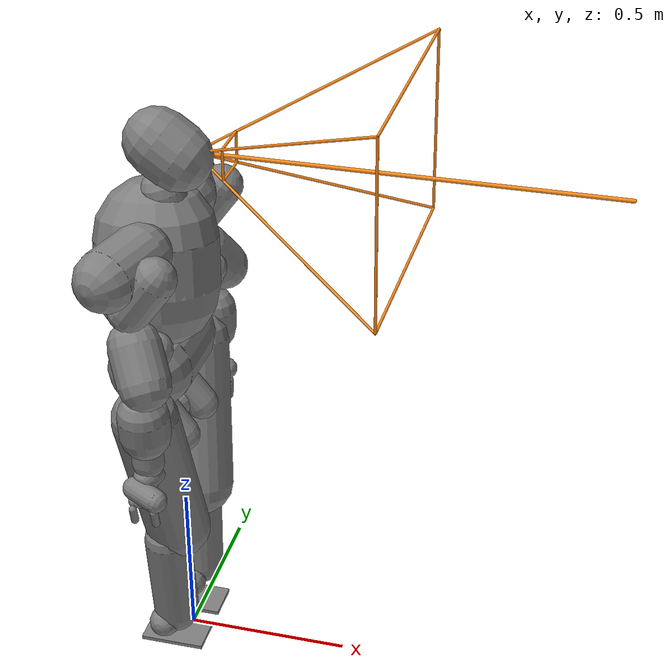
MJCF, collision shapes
<!-- GENERATED by talos_study_import.py from talos.xml - do not hand-edit. -->
<mujoco model="talos_study">
  <compiler angle="radian" meshdir="assets" autolimits="true" />
  <option timestep="0.001" integrator="implicitfast" />
  <asset>
    <material name="black" rgba="0.1 0.1 0.1 1" />
    <material name="orange" rgba="1 0.5 0 1" />
    <material name="white" rgba="0.9 0.9 0.9 1" />
    <mesh file="torso/torso_1.stl" />
    <mesh file="torso/torso_2.stl" />
    <mesh file="torso/torso_2_collision.stl" />
    <mesh file="torso/base_link.stl" />
    <mesh file="torso/base_link_collision.stl" />
    <mesh file="head/head_1.stl" />
    <mesh file="head/head_1_collision.stl" />
    <mesh file="head/head_2_default.stl" />
    <mesh file="head/head_2_default_collision.stl" />
    <mesh file="sensors/orbbec/orbbec.stl" />
    <mesh name="l_arm_1" file="arm/arm_1.stl" />
    <mesh name="l_arm_1c" file="arm/arm_1_collision.stl" />
    <mesh name="l_arm_2" file="arm/arm_2.stl" />
    <mesh name="l_arm_2c" file="arm/arm_2_collision.stl" />
    <mesh name="l_arm_3" file="arm/arm_3.stl" />
    <mesh name="l_arm_3c" file="arm/arm_3_collision.stl" />
    <mesh name="l_arm_4" file="arm/arm_4.stl" />
    <mesh name="l_arm_4c" file="arm/arm_4_collision.stl" />
    <mesh name="l_arm_5" file="arm/arm_5.stl" />
    <mesh name="l_arm_5c" file="arm/arm_5_collision.stl" />
    <mesh name="l_arm_6" file="arm/arm_6.stl" />
    <mesh name="l_arm_6c" file="arm/arm_6_collision.stl" />
    <mesh name="l_arm_7" file="arm/arm_7.stl" />
    <mesh name="l_arm_7c" file="arm/arm_7_collision.stl" />
    <mesh name="r_arm_1" file="arm/arm_1.stl" scale="1 -1 1" />
    <mesh name="r_arm_1c" file="arm/arm_1_collision.stl" scale="1 -1 1" />
    <mesh name="r_arm_2" file="arm/arm_2.stl" scale="1 -1 1" />
    <mesh name="r_arm_2c" file="arm/arm_2_collision.stl" scale="1 -1 1" />
    <mesh name="r_arm_3" file="arm/arm_3.stl" scale="1 -1 1" />
    <mesh name="r_arm_3c" file="arm/arm_3_collision.stl" scale="1 -1 1" />
    <mesh name="r_arm_4" file="arm/arm_4.stl" scale="1 -1 1" />
    <mesh name="r_arm_4c" file="arm/arm_4_collision.stl" scale="1 -1 1" />
    <mesh name="r_arm_5" file="arm/arm_5.stl" scale="1 -1 1" />
    <mesh name="r_arm_5c" file="arm/arm_5_collision.stl" scale="1 -1 1" />
    <mesh name="r_arm_6" file="arm/arm_6.stl" scale="1 -1 1" />
    <mesh name="r_arm_6c" file="arm/arm_6_collision.stl" scale="1 -1 1" />
    <mesh name="r_arm_7" file="arm/arm_7.stl" scale="1 -1 1" />
    <mesh name="r_arm_7c" file="arm/arm_7_collision.stl" scale="1 -1 1" />
    <mesh name="gripper_base_link" file="gripper/base_link.stl" />
    <mesh name="gripper_base_link_collision" file="gripper/base_link_collision.stl" />
    <mesh file="gripper/fingertip.stl" />
    <mesh file="gripper/fingertip_collision.stl" />
    <mesh file="gripper/gripper_motor_double.stl" />
    <mesh file="gripper/gripper_motor_double_collision.stl" />
    <mesh file="gripper/gripper_motor_single.stl" />
    <mesh file="gripper/gripper_motor_single_collision.stl" />
    <mesh file="gripper/inner_double.stl" />
    <mesh file="gripper/inner_double_collision.stl" />
    <mesh file="gripper/inner_single.stl" />
    <mesh file="gripper/inner_single_collision.stl" />
    <mesh name="l_hip_z_lo_res" file="v2/hip_z_lo_res.stl" />
    <mesh name="l_hip_z_collision" file="v2/hip_z_collision.stl" />
    <mesh name="l_hip_x_lo_res" file="v2/hip_x_lo_res.stl" />
    <mesh name="l_hip_x_collision" file="v2/hip_x_collision.stl" />
    <mesh name="l_hip_y_lo_res" file="v2/hip_y_lo_res.stl" />
    <mesh name="l_hip_y_collision" file="v2/hip_y_collision.stl" />
    <mesh name="l_knee_lo_res" file="v2/knee_lo_res.stl" />
    <mesh name="l_knee_collision" file="v2/knee_collision.stl" />
    <mesh name="l_ankle_Y_lo_res" file="v2/ankle_Y_lo_res.stl" />
    <mesh name="l_ankle_Y_collision" file="v2/ankle_Y_collision.stl" />
    <mesh name="l_ankle_X_lo_res" file="v2/ankle_X_lo_res.stl" />
    <mesh name="l_ankle_X_collision" file="v2/ankle_X_collision.stl" scale="1 1 0.88" />
    <mesh name="r_hip_z_lo_res" file="v2/hip_z_lo_res.stl" scale="1 -1 1" />
    <mesh name="r_hip_z_collision" file="v2/hip_z_collision.stl" scale="1 -1 1" />
    <mesh name="r_hip_x_lo_res" file="v2/hip_x_lo_res.stl" scale="1 -1 1" />
    <mesh name="r_hip_x_collision" file="v2/hip_x_collision.stl" scale="1 -1 1" />
    <mesh name="r_hip_y_lo_res" file="v2/hip_y_lo_res.stl" scale="1 -1 1" />
    <mesh name="r_hip_y_collision" file="v2/hip_y_collision.stl" scale="1 -1 1" />
    <mesh name="r_knee_lo_res" file="v2/knee_lo_res.stl" scale="1 -1 1" />
    <mesh name="r_knee_collision" file="v2/knee_collision.stl" scale="1 -1 1" />
    <mesh name="r_ankle_Y_lo_res" file="v2/ankle_Y_lo_res.stl" scale="1 -1 1" />
    <mesh name="r_ankle_Y_collision" file="v2/ankle_Y_collision.stl" scale="1 -1 1" />
    <mesh name="r_ankle_X_lo_res" file="v2/ankle_X_lo_res.stl" scale="1 -1 1" />
    <mesh name="r_ankle_X_collision" file="v2/ankle_X_collision.stl" scale="1 -1 0.88" />
  </asset>
  <default>
    <default class="talos">
      <site rgba="1 0 0 1" size="0.01" group="5" />
      <joint frictionloss="1" damping="1" />
      <geom type="mesh" solref="0.001 1" />
      <default class="visual">
        <geom group="2" contype="0" conaffinity="0" density="0" />
      </default>
      <default class="collision">
        <geom group="3" />
      </default>
    </default>
  </default>
  <worldbody>
    <body name="base_link" pos="0 0 1.1" childclass="talos">
      <freejoint name="reference" />
      <inertial pos="-0.05709419 0.00153054 -0.0762521" mass="15.36284" fullinertia="0.20105075811 0.08411496729 0.2318908414 0.00023244734 0.0040167728 -0.00087206649" />
      <geom class="visual" material="white" mesh="base_link" />
      <body name="torso_1_link" pos="0 0 0.0722">
        <inertial pos="0.00078223 3.528e-05 -0.0178246" quat="0.703744 0.704233 0.0663452 -0.0663278" mass="2.29466" diaginertia="0.00639091 0.00622386 0.00410256" />
        <joint name="torso_1_joint" axis="0 0 1" range="-1.25664 1.25664" frictionloss="2" actuatorfrcrange="-200 200" />
        <geom class="visual" material="white" mesh="torso_1" />
        <body name="torso_2_link">
          <inertial pos="-0.0463 -0.000989647 0.145241" quat="0.704021 0.708473 0.0363665 -0.0331367" mass="16.984" diaginertia="0.444971 0.320913 0.299991" />
          <joint name="torso_2_joint" axis="0 1 0" range="-0.226893 0.733038" frictionloss="2" actuatorfrcrange="-200 200" />
          <geom class="visual" material="white" mesh="torso_2" />
          <geom size="0.005 0.005 0.005" pos="0.04925 0 0.078" quat="0 1 1 0" type="box" class="visual" density="0" material="black" />
          <body name="head_1_link" pos="0 0 0.316">
            <inertial pos="-0.00157211 -0.00157919 0.0217577" quat="0.679576 0.71147 -0.126684 0.126246" mass="0.73746" diaginertia="0.0022809 0.00202202 0.00110971" />
            <joint name="head_1_joint" axis="0 1 0" range="-0.20944 0.785398" damping="0.5" actuatorfrcrange="-8 8" />
            <geom class="visual" mesh="head_1" material="black" />
            <body name="head_2_link">
              <site name="head" pos="0 0 0.2" />
              <inertial pos="0.0108233 0.000630364 0.142045" quat="0.584927 -0.0294601 -0.0201927 0.810299" mass="1.46795" diaginertia="0.0110721 0.0109715 0.00581517" />
              <joint name="head_2_joint" axis="0 0 1" range="-1.309 1.309" damping="0.5" actuatorfrcrange="-4 4" />
              <geom class="visual" material="white" mesh="head_2_default" />
              <geom pos="0.0621 0.0375 0.1832" class="visual" mesh="orbbec" material="black" />
              <geom name="head_2_link_col0" class="collision" type="capsule" size="0.0980677" fromto="-0.017466 0.000578482 0.221895 0.0411364 -0.000779427 0.181839" />
              <camera name="head_cam" pos="0.0621 0.0375 0.1832" xyaxes="0 -1 0 0 0 1" fovy="49.4" resolution="640 480" />
              <site name="head_cam_site" pos="0.0621 0.0375 0.1832" xyaxes="0 -1 0 0 0 1" size="0.006" rgba="0 0 1 0.6" />
              <geom name="cam_fov_near_0" type="capsule" size="0.004" fromto="0.17500 -0.02383 0.22919 0.17500 -0.02383 0.13721" rgba="1 0.55 0.1 0.9" contype="0" conaffinity="0" mass="0" group="4" />
              <geom name="cam_fov_near_1" type="capsule" size="0.004" fromto="0.17500 -0.02383 0.13721 0.17500 0.09883 0.13721" rgba="1 0.55 0.1 0.9" contype="0" conaffinity="0" mass="0" group="4" />
              <geom name="cam_fov_near_2" type="capsule" size="0.004" fromto="0.17500 0.09883 0.13721 0.17500 0.09883 0.22919" rgba="1 0.55 0.1 0.9" contype="0" conaffinity="0" mass="0" group="4" />
              <geom name="cam_fov_near_3" type="capsule" size="0.004" fromto="0.17500 0.09883 0.22919 0.17500 -0.02383 0.22919" rgba="1 0.55 0.1 0.9" contype="0" conaffinity="0" mass="0" group="4" />
              <geom name="cam_fov_far_0" type="capsule" size="0.004" fromto="0.67500 -0.33046 0.45917 0.67500 -0.33046 -0.09277" rgba="1 0.55 0.1 0.9" contype="0" conaffinity="0" mass="0" group="4" />
              <geom name="cam_fov_far_1" type="capsule" size="0.004" fromto="0.67500 -0.33046 -0.09277 0.67500 0.40546 -0.09277" rgba="1 0.55 0.1 0.9" contype="0" conaffinity="0" mass="0" group="4" />
              <geom name="cam_fov_far_2" type="capsule" size="0.004" fromto="0.67500 0.40546 -0.09277 0.67500 0.40546 0.45917" rgba="1 0.55 0.1 0.9" contype="0" conaffinity="0" mass="0" group="4" />
              <geom name="cam_fov_far_3" type="capsule" size="0.004" fromto="0.67500 0.40546 0.45917 0.67500 -0.33046 0.45917" rgba="1 0.55 0.1 0.9" contype="0" conaffinity="0" mass="0" group="4" />
              <geom name="cam_fov_strut_0" type="capsule" size="0.004" fromto="0.07500 0.03750 0.18320 0.67500 -0.33046 0.45917" rgba="1 0.55 0.1 0.9" contype="0" conaffinity="0" mass="0" group="4" />
              <geom name="cam_fov_strut_1" type="capsule" size="0.004" fromto="0.07500 0.03750 0.18320 0.67500 -0.33046 -0.09277" rgba="1 0.55 0.1 0.9" contype="0" conaffinity="0" mass="0" group="4" />
              <geom name="cam_fov_strut_2" type="capsule" size="0.004" fromto="0.07500 0.03750 0.18320 0.67500 0.40546 -0.09277" rgba="1 0.55 0.1 0.9" contype="0" conaffinity="0" mass="0" group="4" />
              <geom name="cam_fov_strut_3" type="capsule" size="0.004" fromto="0.07500 0.03750 0.18320 0.67500 0.40546 0.45917" rgba="1 0.55 0.1 0.9" contype="0" conaffinity="0" mass="0" group="4" />
              <geom name="cam_fov_axis" type="capsule" size="0.006" fromto="0.07500 0.03750 0.18320 1.27500 0.03750 0.18320" rgba="1 0.55 0.1 0.9" contype="0" conaffinity="0" mass="0" group="4" />
            </body>
            <geom name="head_1_link_col0" class="collision" type="capsule" size="0.064396" fromto="0.00814244 -0.00107711 -0.00160042 -0.0119929 -0.00119096 0.0707958" />
          </body>
          <body name="arm_left_1_link" pos="0 0.1575 0.232">
            <inertial pos="-0.0002762 0.100602 0.0443742" quat="0.509187 0.520076 -0.492016 0.477671" mass="2.71457" diaginertia="0.0135919 0.012374 0.00418528" />
            <joint name="arm_left_1_joint" axis="0 0 1" range="-1.5708 0.785398" actuatorfrcrange="-100 100" />
            <geom class="visual" mesh="l_arm_1" material="black" />
            <body name="arm_left_2_link" pos="0.00493 0.1365 0.04673">
              <inertial pos="0.0143883 0.00092938 -0.0868427" quat="0.981914 0.00964503 0.164999 0.0923476" mass="2.42509" diaginertia="0.0140925 0.0138001 0.00368288" />
              <joint name="arm_left_2_joint" axis="1 0 0" range="0.00872665 2.87107" actuatorfrcrange="-100 100" />
              <geom class="visual" mesh="l_arm_2" material="black" />
              <body name="arm_left_3_link">
                <inertial pos="0.0136084 0.0124162 -0.2499" quat="0.991718 0.0691072 -0.105592 -0.0238848" mass="2.20874" diaginertia="0.00735601 0.00699198 0.0036592" />
                <joint name="arm_left_3_joint" axis="0 0 1" range="-2.42601 2.42601" actuatorfrcrange="-70 70" />
                <geom class="visual" mesh="l_arm_3" material="black" />
                <body name="arm_left_4_link" pos="0.02 0 -0.2782">
                  <inertial pos="-0.00810404 -0.0194433 -0.0332924" quat="0.428586 -0.11894 0.057285 0.893804" mass="0.815675" diaginertia="0.00326211 0.002924 0.00111543" />
                  <joint name="arm_left_4_joint" axis="0 1 0" range="-2.23402 -0.00349066" actuatorfrcrange="-70 70" />
                  <geom class="visual" mesh="l_arm_4" material="black" />
                  <body name="arm_left_5_link" pos="-0.02 0 -0.2643">
                    <inertial pos="-6e-05 0.003262 0.079625" quat="0.711712 -0.019748 0.0131536 0.70207" mass="1.87792" diaginertia="0.004373 0.003495 0.002278" />
                    <joint name="arm_left_5_joint" axis="0 0 1" range="-2.51327 2.51327" actuatorfrcrange="-20 20" />
                    <geom class="visual" material="white" mesh="l_arm_5" />
                    <body name="arm_left_6_link">
                      <inertial pos="2.1e-05 -0.001965 -0.000591" quat="0.0104356 0.706678 0.0122672 0.707352" mass="0.40931" diaginertia="0.000154 0.000141 0.000107" />
                      <joint name="arm_left_6_joint" axis="1 0 0" range="-1.37008 1.37008" actuatorfrcrange="-8 8" />
                      <geom class="visual" material="white" mesh="l_arm_6" />
                      <body name="arm_left_7_link">
                        <inertial pos="0.00215393 0.00361697 -0.0837948" quat="0.966304 0.0192407 0.0500561 -0.251755" mass="1.04198" diaginertia="0.00273016 0.00272405 0.0010495" />
                        <joint name="arm_left_7_joint" axis="0 1 0" range="-0.680678 0.680678" actuatorfrcrange="-8 8" />
                        <geom class="visual" mesh="l_arm_7" material="black" />
                        <geom size="0.0225 0.00785" pos="0 0 -0.051" quat="-1 0 0 -1" type="cylinder" class="visual" material="white" />
                        <geom size="0.0225 0.00785" pos="0 0 -0.051" quat="-1 0 0 -1" type="cylinder" material="white" class="collision" />
                        <geom size="0.025 0.004875" pos="0 0 -0.063725" type="cylinder" class="visual" material="black" />
                        <geom size="0.025 0.004875" pos="0 0 -0.063725" type="cylinder" class="collision" material="black" />
                        <geom pos="0 0 -0.092475" class="visual" mesh="gripper_base_link" material="black" />
                        <body name="gripper_left_motor_double_link" pos="0 0.02025 -0.122475">
                          <inertial pos="0.019654 0.018572 -0.011998" quat="0.434706 0.588708 -0.0217956 0.68116" mass="0.134356" diaginertia="0.000272 0.000221 8e-05" />
                          <joint name="gripper_left_joint" axis="1 0 0" range="-0.959931 0" />
                          <geom class="visual" material="orange" mesh="gripper_motor_double" />
                          <geom name="gripper_left_motor_double_link_col0" class="collision" type="capsule" size="0.0346646" fromto="-0.0394582 0.044048 -0.0264103 0.0287089 0.0227942 -0.00923751" />
                        </body>
                        <body name="gripper_left_inner_double_link" pos="0 0.00525 -0.148455">
                          <inertial pos="-0.013283 0.036852 -0.023153" quat="0.312568 0.633813 0.365244 0.605953" mass="0.087986" diaginertia="0.000144 8.89999e-05 7.4e-05" />
                          <joint name="gripper_left_inner_double_joint" axis="1 0 0" range="-1.0472 0" />
                          <geom class="visual" material="orange" mesh="inner_double" />
                          <body name="gripper_left_fingertip_1_link" pos="0.032 0.04589 -0.06553">
                            <inertial pos="0 0.004604 -0.002537" quat="0.70316 -0.074603 0.074603 0.70316" mass="0.026301" diaginertia="8.99999e-06 8e-06 2e-06" />
                            <joint name="gripper_left_fingertip_1_joint" axis="1 0 0" range="0 1.0472" />
                            <geom class="visual" mesh="fingertip" material="black" />
                            <geom name="gripper_left_fingertip_1_link_col0" class="collision" type="capsule" size="0.0117969" fromto="0.000333086 0.000390404 -0.0251443 4.56645e-05 0.0111469 0.0198988" />
                          </body>
                          <body name="gripper_left_fingertip_2_link" pos="-0.032 0.04589 -0.06553">
                            <inertial pos="0 0.004604 -0.002537" quat="0.70316 -0.074603 0.074603 0.70316" mass="0.026301" diaginertia="8.99999e-06 8e-06 2e-06" />
                            <joint name="gripper_left_fingertip_2_joint" axis="1 0 0" range="0 1.0472" />
                            <geom class="visual" mesh="fingertip" material="black" />
                            <geom name="gripper_left_fingertip_2_link_col0" class="collision" type="capsule" size="0.0117969" fromto="0.000333086 0.000390404 -0.0251443 4.56645e-05 0.0111469 0.0198988" />
                          </body>
                          <geom name="gripper_left_inner_double_link_col0" class="collision" type="capsule" size="0.0188897" fromto="0.0317397 0.0374962 -0.0294667 -0.0302815 0.0357914 -0.0263251" />
                        </body>
                        <body name="gripper_left_motor_single_link" pos="0 -0.02025 -0.122475">
                          <inertial pos="0.025237 -0.011231 -0.008158" quat="-0.429079 0.588757 0.0530926 0.682962" mass="0.107923" diaginertia="0.000171 0.000142 5.1e-05" />
                          <joint name="gripper_left_motor_single_joint" axis="1 0 0" range="0 1.0472" />
                          <geom class="visual" material="orange" mesh="gripper_motor_single" />
                          <geom name="gripper_left_motor_single_link_col0" class="collision" type="capsule" size="0.0343163" fromto="-0.0265336 -0.0461885 -0.0274898 0.0326511 -0.0174033 -0.00938569" />
                        </body>
                        <body name="gripper_left_inner_single_link" pos="0 -0.00525 -0.148455">
                          <inertial pos="0 -0.034565 -0.021412" quat="0.672196 -0.216723 0.212111 0.67542" mass="0.047177" diaginertia="4.3e-05 4.2e-05 1.1e-05" />
                          <joint name="gripper_left_inner_single_joint" axis="1 0 0" range="0 1.0472" />
                          <geom class="visual" material="orange" mesh="inner_single" />
                          <body name="gripper_left_fingertip_3_link" pos="0 -0.04589 -0.06553" quat="0 0 0 1">
                            <inertial pos="0 0.004604 -0.002537" quat="0.70316 -0.074603 0.074603 0.70316" mass="0.026301" diaginertia="8.99999e-06 8e-06 2e-06" />
                            <joint name="gripper_left_fingertip_3_joint" axis="1 0 0" range="0 1.0472" />
                            <geom class="visual" mesh="fingertip" material="black" />
                            <site name="left_palm" pos="0 -0.05 0" />
                            <geom name="gripper_left_fingertip_3_link_col0" class="collision" type="capsule" size="0.0117969" fromto="0.000333086 0.000390404 -0.0251443 4.56645e-05 0.0111469 0.0198988" />
                          </body>
                          <geom name="gripper_left_inner_single_link_col0" class="collision" type="capsule" size="0.0207847" fromto="0.000889867 -0.0549073 -0.0409234 -0.0010954 -0.0216496 -0.00240814" />
                        </body>
                        <geom name="arm_left_7_link_col0" class="collision" type="capsule" size="0.0468447" fromto="0.000298967 -0.00104625 -0.0266249 0.00103279 -0.000166504 -0.0647426" />
                        <geom name="arm_left_7_link_col1" class="collision" type="capsule" size="0.0392213" fromto="0.00196681 0.0131336 -0.108922 -0.00434796 -0.0225179 -0.110172" />
                        <site name="end_effector_L_site" pos="0 0 -0.11337" size="0.008" rgba="0.2 0.4 1 0.6" />
                      </body>
                      <geom name="arm_left_6_link_col0" class="collision" type="capsule" size="0.030257" fromto="1.32764e-05 -0.00037643 -0.00441963 6.04591e-06 -0.000371331 -0.00421983" />
                    </body>
                    <geom name="arm_left_5_link_col0" class="collision" type="capsule" size="0.0749788" fromto="0.00102369 0.00715064 0.0379728 0.000641723 0.0121752 0.101425" />
                  </body>
                  <geom name="arm_left_4_link_col0" class="collision" type="capsule" size="0.0500734" fromto="-0.0382545 -0.00399074 -0.0639785 0.00637106 -0.0532021 0.0227309" />
                </body>
                <geom name="arm_left_3_link_col0" class="collision" type="capsule" size="0.0758013" fromto="-0.0127073 0.00253481 -0.217328 0.0303055 0.0547192 -0.303775" />
              </body>
              <geom name="arm_left_2_link_col0" class="collision" type="capsule" size="0.0629949" fromto="-0.0200781 -0.00077645 -0.10707 0.0570945 -0.000611079 -0.00158852" />
            </body>
            <geom name="arm_left_1_link_col0" class="collision" type="capsule" size="0.0888771" fromto="-0.0151372 0.0300203 0.0542325 -0.0606679 0.174868 0.0445187" />
          </body>
          <body name="arm_right_1_link" pos="0 -0.1575 0.232">
            <inertial pos="-0.0002762 -0.100602 0.0443742" quat="0.520076 0.509187 -0.477671 0.492016" mass="2.71457" diaginertia="0.0135919 0.012374 0.00418528" />
            <joint name="arm_right_1_joint" axis="0 0 1" range="-0.785398 1.5708" actuatorfrcrange="-100 100" />
            <geom class="visual" mesh="r_arm_1" material="black" />
            <body name="arm_right_2_link" pos="0.00493 -0.1365 0.04673">
              <inertial pos="0.0143883 -0.00092938 -0.0868427" quat="0.981914 -0.00964503 0.164999 -0.0923476" mass="2.42509" diaginertia="0.0140925 0.0138001 0.00368288" />
              <joint name="arm_right_2_joint" axis="1 0 0" range="-2.87107 -0.00872665" actuatorfrcrange="-100 100" />
              <geom class="visual" mesh="r_arm_2" material="black" />
              <body name="arm_right_3_link">
                <inertial pos="0.0136084 -0.0124162 -0.2499" quat="0.991718 -0.0691072 -0.105592 0.0238848" mass="2.20874" diaginertia="0.00735601 0.00699198 0.0036592" />
                <joint name="arm_right_3_joint" axis="0 0 1" range="-2.42601 2.42601" actuatorfrcrange="-70 70" />
                <geom class="visual" mesh="r_arm_3" material="black" />
                <body name="arm_right_4_link" pos="0.02 0 -0.2782">
                  <inertial pos="-0.00810404 -0.0194433 -0.0332924" quat="0.428586 -0.11894 0.057285 0.893804" mass="0.815675" diaginertia="0.00326211 0.002924 0.00111543" />
                  <joint name="arm_right_4_joint" axis="0 1 0" range="-2.23402 -0.00349066" actuatorfrcrange="-70 70" />
                  <geom class="visual" mesh="r_arm_4" material="black" />
                  <body name="arm_right_5_link" pos="-0.02 0 -0.2643">
                    <inertial pos="-6e-05 -0.003262 0.079625" quat="0.70207 0.0131536 -0.019748 0.711712" mass="1.87792" diaginertia="0.004373 0.003495 0.002278" />
                    <joint name="arm_right_5_joint" axis="0 0 1" range="-2.51327 2.51327" actuatorfrcrange="-20 20" />
                    <geom class="visual" material="white" mesh="r_arm_5" />
                    <body name="arm_right_6_link">
                      <inertial pos="2.1e-05 0.001965 -0.000591" quat="-0.0104356 0.706678 -0.0122672 0.707352" mass="0.40931" diaginertia="0.000154 0.000141 0.000107" />
                      <joint name="arm_right_6_joint" axis="1 0 0" range="-1.37008 1.37008" actuatorfrcrange="-8 8" />
                      <geom class="visual" material="white" mesh="r_arm_6" />
                      <body name="arm_right_7_link">
                        <inertial pos="0.0023011 -0.00361697 -0.0837948" quat="0.927123 -0.0149278 0.0465372 0.371557" mass="1.04198" diaginertia="0.00273231 0.00271796 0.00105208" />
                        <joint name="arm_right_7_joint" axis="0 1 0" range="-0.680678 0.680678" actuatorfrcrange="-8 8" />
                        <geom class="visual" mesh="r_arm_7" material="black" />
                        <geom size="0.0225 0.00785" pos="0 0 -0.051" quat="1 0 0 -1" type="cylinder" class="visual" material="white" />
                        <geom size="0.0225 0.00785" pos="0 0 -0.051" quat="1 0 0 -1" type="cylinder" material="white" class="collision" />
                        <geom size="0.025 0.004875" pos="0 0 -0.063725" quat="0 0 0 -1" type="cylinder" class="visual" material="black" />
                        <geom size="0.025 0.004875" pos="0 0 -0.063725" quat="0 0 0 -1" type="cylinder" material="black" class="collision" />
                        <geom pos="0 0 -0.092475" quat="0 0 0 -1" class="visual" mesh="gripper_base_link" material="black" />
                        <body name="gripper_right_motor_double_link" pos="0 -0.02025 -0.122475" quat="0 0 0 -1">
                          <inertial pos="0.019654 0.018572 -0.011998" quat="0.434706 0.588708 -0.0217956 0.68116" mass="0.134356" diaginertia="0.000272 0.000221 8e-05" />
                          <joint name="gripper_right_joint" axis="1 0 0" range="-0.959931 0" />
                          <geom class="visual" material="orange" mesh="gripper_motor_double" />
                          <geom name="gripper_right_motor_double_link_col0" class="collision" type="capsule" size="0.0346646" fromto="-0.0394582 0.044048 -0.0264103 0.0287089 0.0227942 -0.00923751" />
                        </body>
                        <body name="gripper_right_inner_double_link" pos="0 -0.00525 -0.148455" quat="0 0 0 -1">
                          <inertial pos="-0.013283 0.036852 -0.023153" quat="0.312568 0.633813 0.365244 0.605953" mass="0.087986" diaginertia="0.000144 8.89999e-05 7.4e-05" />
                          <joint name="gripper_right_inner_double_joint" axis="1 0 0" range="-1.0472 0" />
                          <geom class="visual" material="orange" mesh="inner_double" />
                          <body name="gripper_right_fingertip_1_link" pos="0.032 0.04589 -0.06553">
                            <inertial pos="0 0.004604 -0.002537" quat="0.70316 -0.074603 0.074603 0.70316" mass="0.026301" diaginertia="8.99999e-06 8e-06 2e-06" />
                            <joint name="gripper_right_fingertip_1_joint" axis="1 0 0" range="0 1.0472" />
                            <geom class="visual" mesh="fingertip" material="black" />
                            <geom name="gripper_right_fingertip_1_link_col0" class="collision" type="capsule" size="0.0117969" fromto="0.000333086 0.000390404 -0.0251443 4.56645e-05 0.0111469 0.0198988" />
                          </body>
                          <body name="gripper_right_fingertip_2_link" pos="-0.032 0.04589 -0.06553">
                            <inertial pos="0 0.004604 -0.002537" quat="0.70316 -0.074603 0.074603 0.70316" mass="0.026301" diaginertia="8.99999e-06 8e-06 2e-06" />
                            <joint name="gripper_right_fingertip_2_joint" axis="1 0 0" range="0 1.0472" />
                            <geom class="visual" mesh="fingertip" material="black" />
                            <site name="right_palm" pos="0 -0.05 0" />
                            <geom name="gripper_right_fingertip_2_link_col0" class="collision" type="capsule" size="0.0117969" fromto="0.000333086 0.000390404 -0.0251443 4.56645e-05 0.0111469 0.0198988" />
                          </body>
                          <geom name="gripper_right_inner_double_link_col0" class="collision" type="capsule" size="0.0188897" fromto="0.0317397 0.0374962 -0.0294667 -0.0302815 0.0357914 -0.0263251" />
                        </body>
                        <body name="gripper_right_motor_single_link" pos="0 0.02025 -0.122475" quat="0 0 0 -1">
                          <inertial pos="0.025237 -0.011231 -0.008158" quat="-0.429079 0.588757 0.0530926 0.682962" mass="0.107923" diaginertia="0.000171 0.000142 5.1e-05" />
                          <joint name="gripper_right_motor_single_joint" axis="1 0 0" range="0 1.0472" />
                          <geom class="visual" material="orange" mesh="gripper_motor_single" />
                          <geom name="gripper_right_motor_single_link_col0" class="collision" type="capsule" size="0.0343163" fromto="-0.0265336 -0.0461885 -0.0274898 0.0326511 -0.0174033 -0.00938569" />
                        </body>
                        <body name="gripper_right_inner_single_link" pos="0 0.00525 -0.148455" quat="0 0 0 -1">
                          <inertial pos="0 -0.034565 -0.021412" quat="0.672196 -0.216723 0.212111 0.67542" mass="0.047177" diaginertia="4.3e-05 4.2e-05 1.1e-05" />
                          <joint name="gripper_right_inner_single_joint" axis="1 0 0" range="0 1.0472" />
                          <geom class="visual" material="orange" mesh="inner_single" />
                          <body name="gripper_right_fingertip_3_link" pos="0 -0.04589 -0.06553" quat="0 0 0 1">
                            <inertial pos="0 0.004604 -0.002537" quat="0.70316 -0.074603 0.074603 0.70316" mass="0.026301" diaginertia="8.99999e-06 8e-06 2e-06" />
                            <joint name="gripper_right_fingertip_3_joint" axis="1 0 0" range="0 1.0472" />
                            <geom class="visual" mesh="fingertip" material="black" />
                            <geom name="gripper_right_fingertip_3_link_col0" class="collision" type="capsule" size="0.0117969" fromto="0.000333086 0.000390404 -0.0251443 4.56645e-05 0.0111469 0.0198988" />
                          </body>
                          <geom name="gripper_right_inner_single_link_col0" class="collision" type="capsule" size="0.0207847" fromto="0.000889867 -0.0549073 -0.0409234 -0.0010954 -0.0216496 -0.00240814" />
                        </body>
                        <geom name="arm_right_7_link_col0" class="collision" type="capsule" size="0.0468447" fromto="0.000298967 0.00104625 -0.0266249 0.00103279 0.000166504 -0.0647426" />
                        <geom name="arm_right_7_link_col1" class="collision" type="capsule" size="0.0392213" fromto="-0.00196681 -0.0131336 -0.108922 0.00434796 0.0225179 -0.110172" />
                        <site name="end_effector_R_site" pos="0 0 -0.11337" size="0.008" rgba="1 0.2 0.2 0.6" />
                      </body>
                      <geom name="arm_right_6_link_col0" class="collision" type="capsule" size="0.030257" fromto="1.32764e-05 0.00037643 -0.00441963 6.04591e-06 0.000371331 -0.00421983" />
                    </body>
                    <geom name="arm_right_5_link_col0" class="collision" type="capsule" size="0.0749788" fromto="0.00102369 -0.00715064 0.0379728 0.000641723 -0.0121752 0.101425" />
                  </body>
                  <geom name="arm_right_4_link_col0" class="collision" type="capsule" size="0.0500734" fromto="-0.0382545 0.00399074 -0.0639785 0.00637106 0.0532021 0.0227309" />
                </body>
                <geom name="arm_right_3_link_col0" class="collision" type="capsule" size="0.0758013" fromto="-0.0127073 -0.00253481 -0.217328 0.0303055 -0.0547192 -0.303775" />
              </body>
              <geom name="arm_right_2_link_col0" class="collision" type="capsule" size="0.0629949" fromto="-0.0200781 0.00077645 -0.10707 0.0570945 0.000611079 -0.00158852" />
            </body>
            <geom name="arm_right_1_link_col0" class="collision" type="capsule" size="0.0888771" fromto="-0.0151372 -0.0300203 0.0542325 -0.0606679 -0.174868 0.0445187" />
          </body>
          <geom name="torso_2_link_col0" class="collision" type="capsule" size="0.179788" fromto="-0.0364977 -0.0178981 0.0954681 -0.0459225 0.0117406 0.234234" />
        </body>
        <geom name="torso_1_link_col0" class="collision" type="capsule" size="0.0708509" fromto="-0.00490558 0.00266006 0.000957421 -0.00512408 -0.00250301 0.000903233" />
      </body>
      <body name="leg_left_1_link" pos="-0.02 0.085 -0.27105">
        <inertial pos="0.0847284 0.109974 0.017059" quat="0.522748 -0.852371 -0.00673577 0.012351" mass="2.23501" diaginertia="0.0105013 0.0076913 0.00473271" />
        <joint name="leg_left_1_joint" axis="0 0 1" range="-0.349066 1.5708" actuatorfrcrange="-100 100" />
        <geom class="visual" mesh="l_hip_z_lo_res" material="black" />
        <body name="leg_left_2_link">
          <inertial pos="-0.00704703 0.0259266 0.00273385" quat="0.712294 0.701399 -0.00472331 -0.0255805" mass="1.49095" diaginertia="0.00497732 0.00474343 0.00189918" />
          <joint name="leg_left_2_joint" axis="1 0 0" range="-0.5236 0.5236" actuatorfrcrange="-160 160" />
          <geom class="visual" mesh="l_hip_x_lo_res" material="black" />
          <body name="leg_left_3_link">
            <inertial pos="0.0058523 0.0636967 -0.183396" quat="0.995121 -0.0974306 -0.00559068 0.0145098" mass="6.23987" diaginertia="0.153409 0.140791 0.0256712" />
            <joint name="leg_left_3_joint" axis="0 1 0" range="-2.095 0.7" actuatorfrcrange="-160 160" />
            <geom class="visual" mesh="l_hip_y_lo_res" material="black" />
            <body name="leg_left_4_link" pos="0 0 -0.38">
              <inertial pos="0.0131772 0.0291751 -0.115946" quat="0.999357 0.00773677 -0.0135107 0.0322952" mass="3.75995" diaginertia="0.0429266 0.0359662 0.013621" />
              <joint name="leg_left_4_joint" axis="0 1 0" range="0 2.618" actuatorfrcrange="-400 400" />
              <geom class="visual" mesh="l_knee_lo_res" material="black" />
              <body name="leg_left_5_link" pos="0 0 -0.325">
                <inertial pos="-0.0140084 0.0418006 0.0382019" quat="0.94386 -0.249123 0.00319491 0.216924" mass="1.29096" diaginertia="0.0118206 0.010046 0.00352112" />
                <joint name="leg_left_5_joint" axis="0 1 0" range="-1.27 0.68" actuatorfrcrange="-160 160" />
                <geom class="visual" rgba="0.7 0.7 0.7 1" mesh="l_ankle_Y_lo_res" />
                <body name="leg_left_6_link">
                  <inertial pos="-0.0201699 -0.000510665 -0.0602836" quat="0.343485 0.610901 0.618186 0.3559" mass="1.61177" diaginertia="0.00773279 0.006503 0.00387932" />
                  <joint name="leg_left_6_joint" axis="1 0 0" range="-0.5236 0.5236" actuatorfrcrange="-100 100" />
                  <geom class="visual" rgba="0.7 0.7 0.7 1" mesh="l_ankle_X_lo_res" />
                  <geom class="collision" contype="6" type="box" size=".1 .06 .006" pos="-0.005 0 -.1" />
                  <site name="left_foot" pos="0 0 -0.1" />
                </body>
                <geom name="leg_left_5_link_col0" class="collision" type="capsule" size="0.0487673" fromto="-0.0154757 0.073281 0.0012668 -0.00148972 -0.0372171 -0.00233154" />
              </body>
              <geom name="leg_left_4_link_col0" class="collision" type="capsule" size="0.0706798" fromto="0.0122944 0.0366936 -0.296212 0.00880552 0.0652194 0.00460864" />
            </body>
            <geom name="leg_left_3_link_col0" class="collision" type="capsule" size="0.0988114" fromto="-0.000682119 0.145635 0.117222 0.033079 0.0293106 -0.34824" />
          </body>
          <geom name="leg_left_2_link_col0" class="collision" type="capsule" size="0.0534952" fromto="-0.00800039 0.0528369 0.00281729 -0.0058797 -0.0196728 0.00175432" />
        </body>
        <geom name="leg_left_1_link_col0" class="collision" type="capsule" size="0.0507841" fromto="0.0571471 0.00128421 -0.0211466 -0.0290784 -0.00171886 0.0923021" />
      </body>
      <body name="leg_right_1_link" pos="-0.02 -0.085 -0.27105">
        <inertial pos="0.0847284 -0.109974 0.017059" quat="0.522748 0.852371 -0.00673577 0.012351" mass="2.23501" diaginertia="0.0105013 0.0076913 0.00473271" />
        <joint name="leg_right_1_joint" axis="0 0 1" range="-1.5708 0.349066" actuatorfrcrange="-100 100" />
        <geom class="visual" mesh="r_hip_z_lo_res" material="black" />
        <body name="leg_right_2_link">
          <inertial pos="-0.00704703 -0.0259266 0.00273385" quat="0.701399 0.712294 0.0255805 0.00472331" mass="1.49095" diaginertia="0.00497732 0.00474343 0.00189918" />
          <joint name="leg_right_2_joint" axis="1 0 0" range="-0.5236 0.5236" actuatorfrcrange="-160 160" />
          <geom class="visual" mesh="r_hip_x_lo_res" material="black" />
          <body name="leg_right_3_link">
            <inertial pos="0.0058523 -0.0636967 -0.183396" quat="0.995121 0.0974306 -0.00559068 -0.0145098" mass="6.23987" diaginertia="0.153409 0.140791 0.0256712" />
            <joint name="leg_right_3_joint" axis="0 1 0" range="-2.095 0.7" actuatorfrcrange="-160 160" />
            <geom class="visual" mesh="r_hip_y_lo_res" material="black" />
            <body name="leg_right_4_link" pos="0 0 -0.38">
              <inertial pos="0.0131772 -0.0291751 -0.115946" quat="0.999357 -0.00773677 -0.0135107 -0.0322952" mass="3.75995" diaginertia="0.0429266 0.0359662 0.013621" />
              <joint name="leg_right_4_joint" axis="0 1 0" range="0 2.618" actuatorfrcrange="-400 400" />
              <geom class="visual" mesh="r_knee_lo_res" material="black" />
              <body name="leg_right_5_link" pos="0 0 -0.325">
                <inertial pos="-0.0140084 -0.0418006 0.0382019" quat="0.94386 0.249123 0.00319491 -0.216924" mass="1.29096" diaginertia="0.0118206 0.010046 0.00352112" />
                <joint name="leg_right_5_joint" axis="0 1 0" range="-1.27 0.68" actuatorfrcrange="-160 160" />
                <geom class="visual" rgba="0.7 0.7 0.7 1" mesh="r_ankle_Y_lo_res" />
                <body name="leg_right_6_link">
                  <inertial pos="-0.0201699 0.000510665 -0.0602836" quat="0.3559 0.618186 0.610901 0.343485" mass="1.61177" diaginertia="0.00773279 0.006503 0.00387932" />
                  <joint name="leg_right_6_joint" axis="1 0 0" range="-0.5236 0.5236" actuatorfrcrange="-100 100" />
                  <geom class="visual" rgba="0.7 0.7 0.7 1" mesh="r_ankle_X_lo_res" />
                  <geom class="collision" contype="6" type="box" size=".1 .06 .006" pos="-0.005 0 -.1" />
                  <site name="right_foot" pos="0 0 -0.1" />
                </body>
                <geom name="leg_right_5_link_col0" class="collision" type="capsule" size="0.0487673" fromto="-0.0154757 -0.073281 0.0012668 -0.00148972 0.0372171 -0.00233154" />
              </body>
              <geom name="leg_right_4_link_col0" class="collision" type="capsule" size="0.0706798" fromto="0.0122944 -0.0366936 -0.296212 0.00880552 -0.0652194 0.00460864" />
            </body>
            <geom name="leg_right_3_link_col0" class="collision" type="capsule" size="0.0988114" fromto="-0.000682119 -0.145635 0.117222 0.033079 -0.0293106 -0.34824" />
          </body>
          <geom name="leg_right_2_link_col0" class="collision" type="capsule" size="0.0534952" fromto="-0.00800039 -0.0528369 0.00281729 -0.0058797 0.0196728 0.00175432" />
        </body>
        <geom name="leg_right_1_link_col0" class="collision" type="capsule" size="0.0507841" fromto="0.0571471 -0.00128421 -0.0211466 -0.0290784 0.00171886 0.0923021" />
      </body>
      <geom name="base_link_col0" class="collision" type="capsule" size="0.126338" fromto="-0.044373 0.0955241 -0.0596236 -0.044633 -0.0959552 -0.0594763" />
    </body>
  </worldbody>
  <contact>
    <exclude body1="torso_2_link" body2="base_link" />
    <exclude body1="arm_left_7_link" body2="arm_left_4_link" />
    <exclude body1="arm_right_7_link" body2="arm_right_4_link" />
    <exclude body1="arm_left_7_link" body2="arm_left_6_link" />
    <exclude body1="arm_right_7_link" body2="arm_right_6_link" />
    <exclude body1="arm_left_7_link" body2="arm_left_5_link" />
    <exclude body1="arm_right_7_link" body2="arm_right_5_link" />
    <exclude body1="leg_left_3_link" body2="leg_left_4_link" />
    <exclude body1="leg_right_3_link" body2="leg_right_4_link" />
    <exclude body1="leg_left_3_link" body2="leg_left_2_link" />
    <exclude body1="leg_right_3_link" body2="leg_right_2_link" />
    <exclude body1="leg_left_3_link" body2="leg_left_1_link" />
    <exclude body1="leg_right_3_link" body2="leg_right_1_link" />
    <exclude body1="leg_left_3_link" body2="base_link" />
    <exclude body1="leg_right_3_link" body2="base_link" />
    <exclude body1="leg_left_6_link" body2="leg_left_4_link" />
    <exclude body1="leg_right_6_link" body2="leg_right_4_link" />
    <exclude body1="arm_left_7_link" body2="gripper_left_inner_double_link" />
    <exclude body1="leg_left_4_link" body2="gripper_left_motor_single_link" />
    <exclude body1="arm_left_7_link" body2="gripper_left_motor_single_link" />
    <exclude body1="arm_left_7_link" body2="gripper_left_motor_double_link" />
    <exclude body1="arm_left_7_link" body2="gripper_left_inner_single_link" />
    <exclude body1="gripper_left_motor_single_link" body2="gripper_left_motor_double_link" />
    <exclude body1="gripper_left_motor_single_link" body2="gripper_left_inner_double_link" />
    <exclude body1="gripper_left_motor_single_link" body2="gripper_left_inner_single_link" />
    <exclude body1="gripper_left_motor_double_link" body2="gripper_left_inner_single_link" />
    <exclude body1="gripper_left_motor_double_link" body2="gripper_left_inner_double_link" />
    <exclude body1="gripper_left_motor_double_link" body2="gripper_left_fingertip_2_link" />
    <exclude body1="gripper_left_motor_single_link" body2="gripper_left_fingertip_3_link" />
    <exclude body1="gripper_left_fingertip_3_link" body2="gripper_left_fingertip_2_link" />
    <exclude body1="gripper_left_fingertip_2_link" body2="gripper_left_fingertip_1_link" />
    <exclude body1="gripper_left_fingertip_3_link" body2="gripper_left_fingertip_1_link" />
    <exclude body1="arm_right_7_link" body2="gripper_right_inner_double_link" />
    <exclude body1="leg_right_4_link" body2="gripper_right_motor_single_link" />
    <exclude body1="arm_right_7_link" body2="gripper_right_motor_single_link" />
    <exclude body1="arm_right_7_link" body2="gripper_right_motor_double_link" />
    <exclude body1="arm_right_7_link" body2="gripper_right_inner_single_link" />
    <exclude body1="gripper_right_motor_single_link" body2="gripper_right_motor_double_link" />
    <exclude body1="gripper_right_motor_single_link" body2="gripper_right_inner_double_link" />
    <exclude body1="gripper_right_motor_single_link" body2="gripper_right_inner_single_link" />
    <exclude body1="gripper_right_motor_double_link" body2="gripper_right_inner_single_link" />
    <exclude body1="gripper_right_motor_double_link" body2="gripper_right_inner_double_link" />
    <exclude body1="gripper_right_motor_double_link" body2="gripper_right_fingertip_2_link" />
    <exclude body1="gripper_right_motor_single_link" body2="gripper_right_fingertip_3_link" />
    <exclude body1="gripper_right_fingertip_3_link" body2="gripper_right_fingertip_2_link" />
    <exclude body1="gripper_right_fingertip_2_link" body2="gripper_right_fingertip_1_link" />
    <exclude body1="gripper_right_fingertip_3_link" body2="gripper_right_fingertip_1_link" />
    <exclude body1="arm_left_3_link" body2="arm_left_5_link" />
    <exclude body1="arm_right_3_link" body2="arm_right_5_link" />
    <exclude body1="leg_left_5_link" body2="leg_right_5_link" />
  </contact>
  <equality>
    <joint joint1="gripper_left_motor_single_joint" joint2="gripper_left_joint" solref="0.01 1" polycoef="0 -1 0 0 0" />
    <joint joint1="gripper_left_joint" joint2="gripper_left_inner_double_joint" solref="0.01 1" polycoef="0 1 0 0 0" />
    <joint joint1="gripper_left_inner_single_joint" joint2="gripper_left_inner_double_joint" solref="0.01 1" polycoef="0 -1 0 0 0" />
    <joint joint1="gripper_right_motor_single_joint" joint2="gripper_right_joint" solref="0.01 1" polycoef="0 -1 0 0 0" />
    <joint joint1="gripper_right_joint" joint2="gripper_right_inner_double_joint" solref="0.01 1" polycoef="0 1 0 0 0" />
    <joint joint1="gripper_right_inner_single_joint" joint2="gripper_right_inner_double_joint" solref="0.01 1" polycoef="0 -1 0 0 0" />
  </equality>
  <keyframe>
    <key name="standing" qpos="0 0 1.08205 1 0 0 0 0 0 0 0 0 0.261799388 0 -0.00349066 0 0 0 0 0 0 0 0 0 0 0 -0.261799388 0 -0.00349066 0 0 0 0 0 0 0 0 0 0 0 0 0 0 0 0 0 0 0 0 0 0" />
  </keyframe>
</mujoco>
